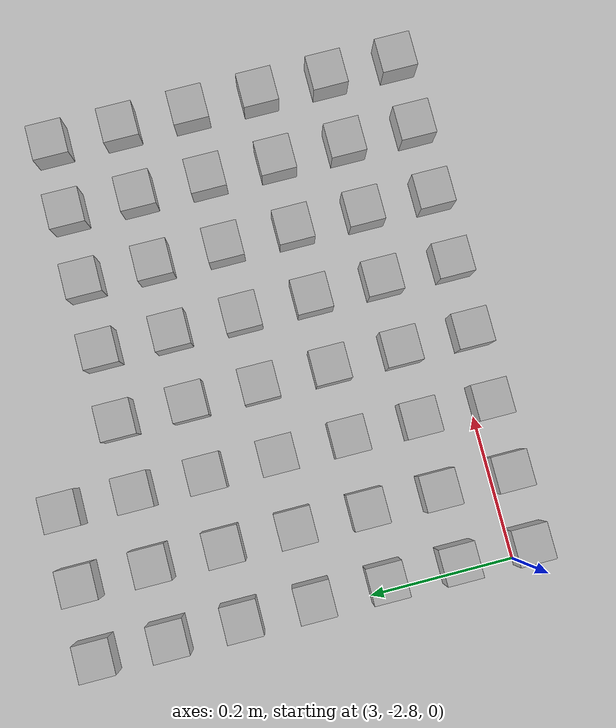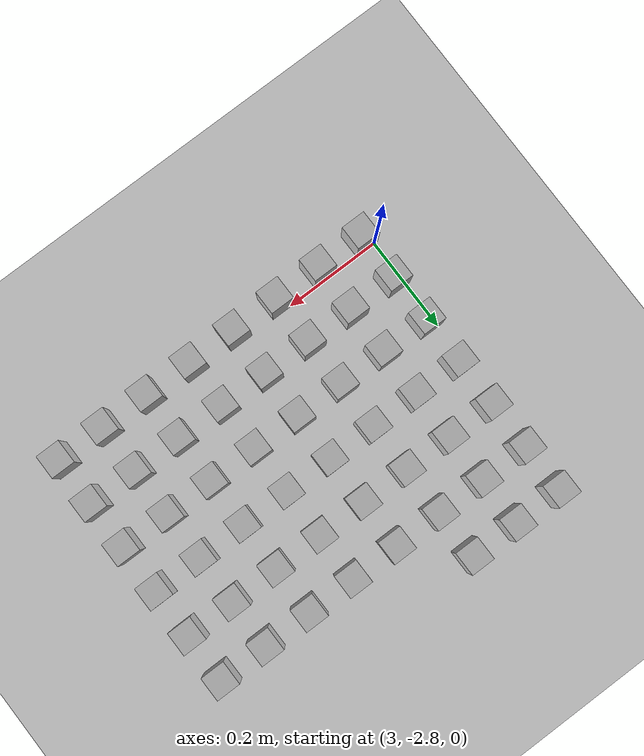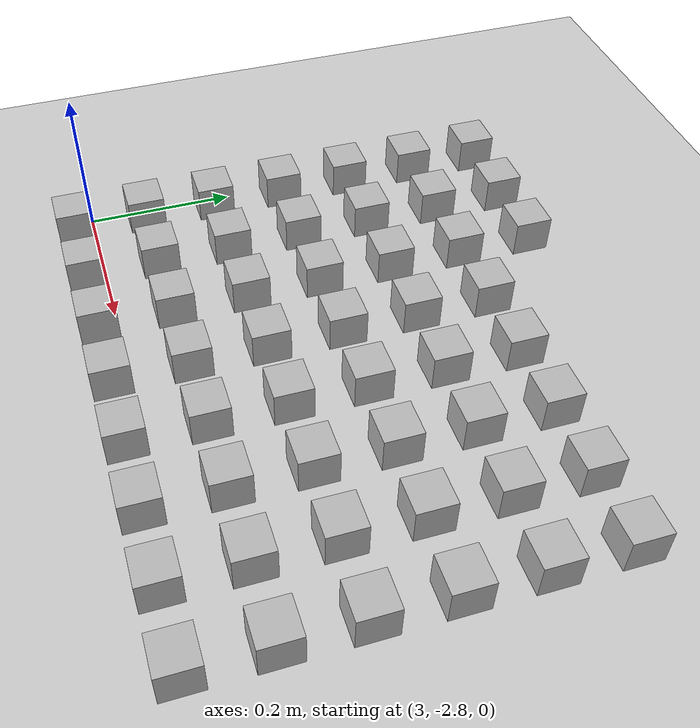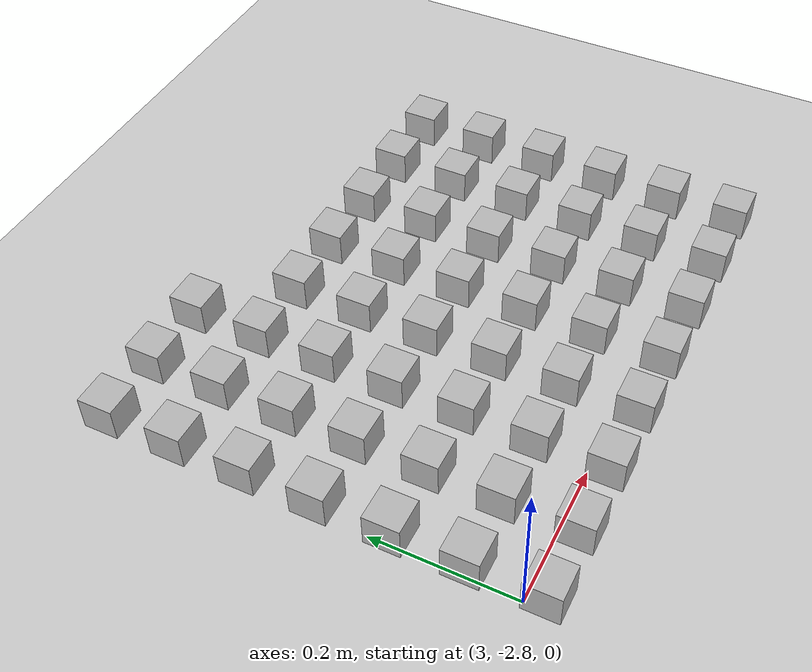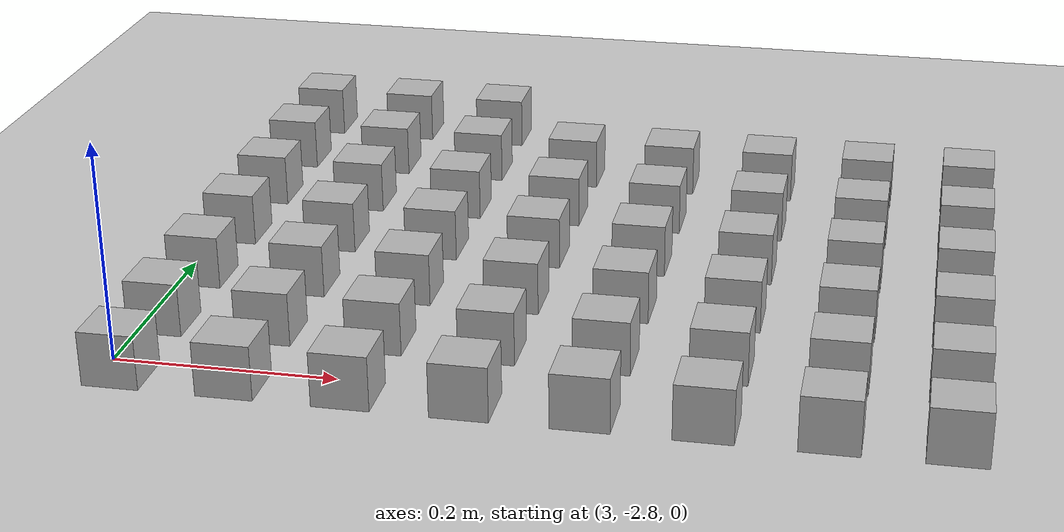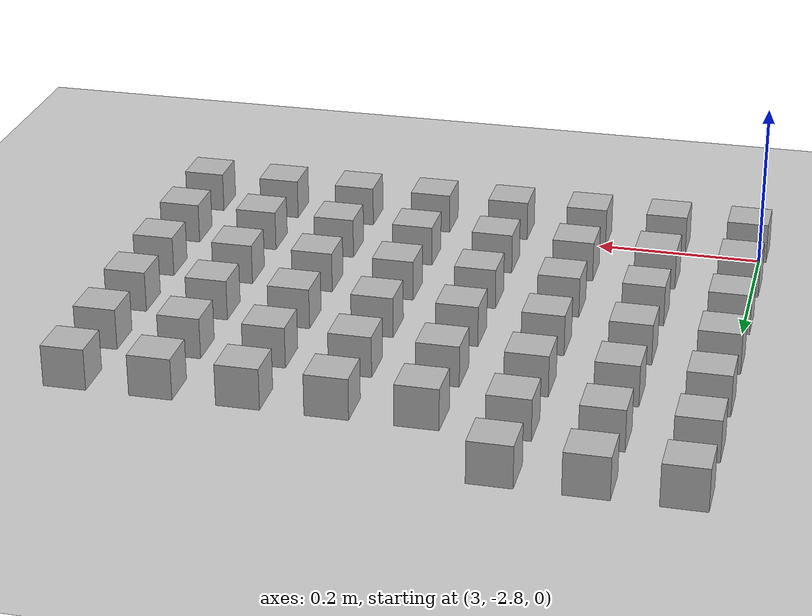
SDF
<sdf version="1.4">
 <world name="default">
  <model name="ground_plane">
   <static>1</static>
   <link name="link">
    <collision name="collision">
     <geometry><plane><normal>0 0 1</normal><size>100 100</size></plane></geometry>
     <surface><friction><ode><mu>100</mu><mu2>50</mu2></ode></friction></surface>
    </collision>
    <visual name="visual">
     <cast_shadows>0</cast_shadows>
     <geometry><plane><normal>0 0 1</normal><size>100 100</size></plane></geometry>
     <material>
      <script><uri>file://media/materials/scripts/gazebo.material</uri><name>Gazebo/Grey</name></script>
     </material>
    </visual>
    <velocity_decay><linear>0</linear><angular>0</angular></velocity_decay>
   </link>
  </model>
  <model name="at64">
   <static>0</static>
   <link name="link">
    <inertial>
     <mass>0.01</mass>
     <inertia><ixx>4e-05</ixx><ixy>0</ixy><ixz>0</ixz><iyy>4e-05</iyy><iyz>0</iyz><izz>4e-05</izz></inertia>
    </inertial>
    <visual name="visual">
     <geometry><box><size>0.05 0.05 0.05</size></box></geometry>
     <material>
      <script>
       <uri>model://at0/materials/scripts</uri>
       <uri>model://at0/materials/textures</uri>
       <name>at0/Diffuse</name>
      </script>
     </material>
    </visual>
    <collision name="collision">
     <geometry><box><size>0.05 0.05 0.05</size></box></geometry>
     <surface><friction><ode><mu>0.8</mu><mu2>0.7</mu2></ode></friction></surface>
    </collision>
    <velocity_decay><linear>0</linear><angular>0</angular></velocity_decay>
   </link>
   <pose>3.01655 -2.82401 0.025 0 -0 0</pose>
  </model>
  <model name="at65">
   <static>0</static>
   <link name="link">
    <inertial>
     <mass>0.01</mass>
     <inertia><ixx>4e-05</ixx><ixy>0</ixy><ixz>0</ixz><iyy>4e-05</iyy><iyz>0</iyz><izz>4e-05</izz></inertia>
    </inertial>
    <visual name="visual">
     <geometry><box><size>0.05 0.05 0.05</size></box></geometry>
     <material>
      <script>
       <uri>model://at0/materials/scripts</uri>
       <uri>model://at0/materials/textures</uri>
       <name>at0/Diffuse</name>
      </script>
     </material>
    </visual>
    <collision name="collision">
     <geometry><box><size>0.05 0.05 0.05</size></box></geometry>
     <surface><friction><ode><mu>0.8</mu><mu2>0.7</mu2></ode></friction></surface>
    </collision>
    <velocity_decay><linear>0</linear><angular>0</angular></velocity_decay>
   </link>
   <pose>3.11655 -2.82401 0.025 0 -0 0</pose>
  </model>
  <model name="at66">
   <static>0</static>
   <link name="link">
    <inertial>
     <mass>0.01</mass>
     <inertia><ixx>4e-05</ixx><ixy>0</ixy><ixz>0</ixz><iyy>4e-05</iyy><iyz>0</iyz><izz>4e-05</izz></inertia>
    </inertial>
    <visual name="visual">
     <geometry><box><size>0.05 0.05 0.05</size></box></geometry>
     <material>
      <script>
       <uri>model://at0/materials/scripts</uri>
       <uri>model://at0/materials/textures</uri>
       <name>at0/Diffuse</name>
      </script>
     </material>
    </visual>
    <collision name="collision">
     <geometry><box><size>0.05 0.05 0.05</size></box></geometry>
     <surface><friction><ode><mu>0.8</mu><mu2>0.7</mu2></ode></friction></surface>
    </collision>
    <velocity_decay><linear>0</linear><angular>0</angular></velocity_decay>
   </link>
   <pose>3.21655 -2.82401 0.025 0 -0 0</pose>
  </model>
  <model name="at67">
   <static>0</static>
   <link name="link">
    <inertial>
     <mass>0.01</mass>
     <inertia><ixx>4e-05</ixx><ixy>0</ixy><ixz>0</ixz><iyy>4e-05</iyy><iyz>0</iyz><izz>4e-05</izz></inertia>
    </inertial>
    <visual name="visual">
     <geometry><box><size>0.05 0.05 0.05</size></box></geometry>
     <material>
      <script>
       <uri>model://at0/materials/scripts</uri>
       <uri>model://at0/materials/textures</uri>
       <name>at0/Diffuse</name>
      </script>
     </material>
    </visual>
    <collision name="collision">
     <geometry><box><size>0.05 0.05 0.05</size></box></geometry>
     <surface><friction><ode><mu>0.8</mu><mu2>0.7</mu2></ode></friction></surface>
    </collision>
    <velocity_decay><linear>0</linear><angular>0</angular></velocity_decay>
   </link>
   <pose>3.31655 -2.82401 0.025 0 -0 0</pose>
  </model>
  <model name="at68">
   <static>0</static>
   <link name="link">
    <inertial>
     <mass>0.01</mass>
     <inertia><ixx>4e-05</ixx><ixy>0</ixy><ixz>0</ixz><iyy>4e-05</iyy><iyz>0</iyz><izz>4e-05</izz></inertia>
    </inertial>
    <visual name="visual">
     <geometry><box><size>0.05 0.05 0.05</size></box></geometry>
     <material>
      <script>
       <uri>model://at0/materials/scripts</uri>
       <uri>model://at0/materials/textures</uri>
       <name>at0/Diffuse</name>
      </script>
     </material>
    </visual>
    <collision name="collision">
     <geometry><box><size>0.05 0.05 0.05</size></box></geometry>
     <surface><friction><ode><mu>0.8</mu><mu2>0.7</mu2></ode></friction></surface>
    </collision>
    <velocity_decay><linear>0</linear><angular>0</angular></velocity_decay>
   </link>
   <pose>3.41655 -2.82401 0.025 0 -0 0</pose>
  </model>
  <model name="at69">
   <static>0</static>
   <link name="link">
    <inertial>
     <mass>0.01</mass>
     <inertia><ixx>4e-05</ixx><ixy>0</ixy><ixz>0</ixz><iyy>4e-05</iyy><iyz>0</iyz><izz>4e-05</izz></inertia>
    </inertial>
    <visual name="visual">
     <geometry><box><size>0.05 0.05 0.05</size></box></geometry>
     <material>
      <script>
       <uri>model://at0/materials/scripts</uri>
       <uri>model://at0/materials/textures</uri>
       <name>at0/Diffuse</name>
      </script>
     </material>
    </visual>
    <collision name="collision">
     <geometry><box><size>0.05 0.05 0.05</size></box></geometry>
     <surface><friction><ode><mu>0.8</mu><mu2>0.7</mu2></ode></friction></surface>
    </collision>
    <velocity_decay><linear>0</linear><angular>0</angular></velocity_decay>
   </link>
   <pose>3.51655 -2.82401 0.025 0 -0 0</pose>
  </model>
  <model name="at70">
   <static>0</static>
   <link name="link">
    <inertial>
     <mass>0.01</mass>
     <inertia><ixx>4e-05</ixx><ixy>0</ixy><ixz>0</ixz><iyy>4e-05</iyy><iyz>0</iyz><izz>4e-05</izz></inertia>
    </inertial>
    <visual name="visual">
     <geometry><box><size>0.05 0.05 0.05</size></box></geometry>
     <material>
      <script>
       <uri>model://at0/materials/scripts</uri>
       <uri>model://at0/materials/textures</uri>
       <name>at0/Diffuse</name>
      </script>
     </material>
    </visual>
    <collision name="collision">
     <geometry><box><size>0.05 0.05 0.05</size></box></geometry>
     <surface><friction><ode><mu>0.8</mu><mu2>0.7</mu2></ode></friction></surface>
    </collision>
    <velocity_decay><linear>0</linear><angular>0</angular></velocity_decay>
   </link>
   <pose>3.61655 -2.82401 0.025 0 -0 0</pose>
  </model>
  <model name="at71">
   <static>0</static>
   <link name="link">
    <inertial>
     <mass>0.01</mass>
     <inertia><ixx>4e-05</ixx><ixy>0</ixy><ixz>0</ixz><iyy>4e-05</iyy><iyz>0</iyz><izz>4e-05</izz></inertia>
    </inertial>
    <visual name="visual">
     <geometry><box><size>0.05 0.05 0.05</size></box></geometry>
     <material>
      <script>
       <uri>model://at0/materials/scripts</uri>
       <uri>model://at0/materials/textures</uri>
       <name>at0/Diffuse</name>
      </script>
     </material>
    </visual>
    <collision name="collision">
     <geometry><box><size>0.05 0.05 0.05</size></box></geometry>
     <surface><friction><ode><mu>0.8</mu><mu2>0.7</mu2></ode></friction></surface>
    </collision>
    <velocity_decay><linear>0</linear><angular>0</angular></velocity_decay>
   </link>
   <pose>3.71655 -2.82401 0.025 0 -0 0</pose>
  </model>
  <model name="at72">
   <static>0</static>
   <link name="link">
    <inertial>
     <mass>0.01</mass>
     <inertia><ixx>4e-05</ixx><ixy>0</ixy><ixz>0</ixz><iyy>4e-05</iyy><iyz>0</iyz><izz>4e-05</izz></inertia>
    </inertial>
    <visual name="visual">
     <geometry><box><size>0.05 0.05 0.05</size></box></geometry>
     <material>
      <script>
       <uri>model://at0/materials/scripts</uri>
       <uri>model://at0/materials/textures</uri>
       <name>at0/Diffuse</name>
      </script>
     </material>
    </visual>
    <collision name="collision">
     <geometry><box><size>0.05 0.05 0.05</size></box></geometry>
     <surface><friction><ode><mu>0.8</mu><mu2>0.7</mu2></ode></friction></surface>
    </collision>
    <velocity_decay><linear>0</linear><angular>0</angular></velocity_decay>
   </link>
   <pose>3.01655 -2.72401 0.025 0 -0 0</pose>
  </model>
  <model name="at73">
   <static>0</static>
   <link name="link">
    <inertial>
     <mass>0.01</mass>
     <inertia><ixx>4e-05</ixx><ixy>0</ixy><ixz>0</ixz><iyy>4e-05</iyy><iyz>0</iyz><izz>4e-05</izz></inertia>
    </inertial>
    <visual name="visual">
     <geometry><box><size>0.05 0.05 0.05</size></box></geometry>
     <material>
      <script>
       <uri>model://at0/materials/scripts</uri>
       <uri>model://at0/materials/textures</uri>
       <name>at0/Diffuse</name>
      </script>
     </material>
    </visual>
    <collision name="collision">
     <geometry><box><size>0.05 0.05 0.05</size></box></geometry>
     <surface><friction><ode><mu>0.8</mu><mu2>0.7</mu2></ode></friction></surface>
    </collision>
    <velocity_decay><linear>0</linear><angular>0</angular></velocity_decay>
   </link>
   <pose>3.11655 -2.72401 0.025 0 -0 0</pose>
  </model>
  <model name="at74">
   <static>0</static>
   <link name="link">
    <inertial>
     <mass>0.01</mass>
     <inertia><ixx>4e-05</ixx><ixy>0</ixy><ixz>0</ixz><iyy>4e-05</iyy><iyz>0</iyz><izz>4e-05</izz></inertia>
    </inertial>
    <visual name="visual">
     <geometry><box><size>0.05 0.05 0.05</size></box></geometry>
     <material>
      <script>
       <uri>model://at0/materials/scripts</uri>
       <uri>model://at0/materials/textures</uri>
       <name>at0/Diffuse</name>
      </script>
     </material>
    </visual>
    <collision name="collision">
     <geometry><box><size>0.05 0.05 0.05</size></box></geometry>
     <surface><friction><ode><mu>0.8</mu><mu2>0.7</mu2></ode></friction></surface>
    </collision>
    <velocity_decay><linear>0</linear><angular>0</angular></velocity_decay>
   </link>
   <pose>3.21655 -2.72401 0.025 0 -0 0</pose>
  </model>
  <model name="at75">
   <static>0</static>
   <link name="link">
    <inertial>
     <mass>0.01</mass>
     <inertia><ixx>4e-05</ixx><ixy>0</ixy><ixz>0</ixz><iyy>4e-05</iyy><iyz>0</iyz><izz>4e-05</izz></inertia>
    </inertial>
    <visual name="visual">
     <geometry><box><size>0.05 0.05 0.05</size></box></geometry>
     <material>
      <script>
       <uri>model://at0/materials/scripts</uri>
       <uri>model://at0/materials/textures</uri>
       <name>at0/Diffuse</name>
      </script>
     </material>
    </visual>
    <collision name="collision">
     <geometry><box><size>0.05 0.05 0.05</size></box></geometry>
     <surface><friction><ode><mu>0.8</mu><mu2>0.7</mu2></ode></friction></surface>
    </collision>
    <velocity_decay><linear>0</linear><angular>0</angular></velocity_decay>
   </link>
   <pose>3.31655 -2.72401 0.025 0 -0 0</pose>
  </model>
  <model name="at76">
   <static>0</static>
   <link name="link">
    <inertial>
     <mass>0.01</mass>
     <inertia><ixx>4e-05</ixx><ixy>0</ixy><ixz>0</ixz><iyy>4e-05</iyy><iyz>0</iyz><izz>4e-05</izz></inertia>
    </inertial>
    <visual name="visual">
     <geometry><box><size>0.05 0.05 0.05</size></box></geometry>
     <material>
      <script>
       <uri>model://at0/materials/scripts</uri>
       <uri>model://at0/materials/textures</uri>
       <name>at0/Diffuse</name>
      </script>
     </material>
    </visual>
    <collision name="collision">
     <geometry><box><size>0.05 0.05 0.05</size></box></geometry>
     <surface><friction><ode><mu>0.8</mu><mu2>0.7</mu2></ode></friction></surface>
    </collision>
    <velocity_decay><linear>0</linear><angular>0</angular></velocity_decay>
   </link>
   <pose>3.41655 -2.72401 0.025 0 -0 0</pose>
  </model>
  <model name="at77">
   <static>0</static>
   <link name="link">
    <inertial>
     <mass>0.01</mass>
     <inertia><ixx>4e-05</ixx><ixy>0</ixy><ixz>0</ixz><iyy>4e-05</iyy><iyz>0</iyz><izz>4e-05</izz></inertia>
    </inertial>
    <visual name="visual">
     <geometry><box><size>0.05 0.05 0.05</size></box></geometry>
     <material>
      <script>
       <uri>model://at0/materials/scripts</uri>
       <uri>model://at0/materials/textures</uri>
       <name>at0/Diffuse</name>
      </script>
     </material>
    </visual>
    <collision name="collision">
     <geometry><box><size>0.05 0.05 0.05</size></box></geometry>
     <surface><friction><ode><mu>0.8</mu><mu2>0.7</mu2></ode></friction></surface>
    </collision>
    <velocity_decay><linear>0</linear><angular>0</angular></velocity_decay>
   </link>
   <pose>3.51655 -2.72401 0.025 0 -0 0</pose>
  </model>
  <model name="at78">
   <static>0</static>
   <link name="link">
    <inertial>
     <mass>0.01</mass>
     <inertia><ixx>4e-05</ixx><ixy>0</ixy><ixz>0</ixz><iyy>4e-05</iyy><iyz>0</iyz><izz>4e-05</izz></inertia>
    </inertial>
    <visual name="visual">
     <geometry><box><size>0.05 0.05 0.05</size></box></geometry>
     <material>
      <script>
       <uri>model://at0/materials/scripts</uri>
       <uri>model://at0/materials/textures</uri>
       <name>at0/Diffuse</name>
      </script>
     </material>
    </visual>
    <collision name="collision">
     <geometry><box><size>0.05 0.05 0.05</size></box></geometry>
     <surface><friction><ode><mu>0.8</mu><mu2>0.7</mu2></ode></friction></surface>
    </collision>
    <velocity_decay><linear>0</linear><angular>0</angular></velocity_decay>
   </link>
   <pose>3.61655 -2.72401 0.025 0 -0 0</pose>
  </model>
  <model name="at79">
   <static>0</static>
   <link name="link">
    <inertial>
     <mass>0.01</mass>
     <inertia><ixx>4e-05</ixx><ixy>0</ixy><ixz>0</ixz><iyy>4e-05</iyy><iyz>0</iyz><izz>4e-05</izz></inertia>
    </inertial>
    <visual name="visual">
     <geometry><box><size>0.05 0.05 0.05</size></box></geometry>
     <material>
      <script>
       <uri>model://at0/materials/scripts</uri>
       <uri>model://at0/materials/textures</uri>
       <name>at0/Diffuse</name>
      </script>
     </material>
    </visual>
    <collision name="collision">
     <geometry><box><size>0.05 0.05 0.05</size></box></geometry>
     <surface><friction><ode><mu>0.8</mu><mu2>0.7</mu2></ode></friction></surface>
    </collision>
    <velocity_decay><linear>0</linear><angular>0</angular></velocity_decay>
   </link>
   <pose>3.71655 -2.72401 0.025 0 -0 0</pose>
  </model>
  <model name="at80">
   <static>0</static>
   <link name="link">
    <inertial>
     <mass>0.01</mass>
     <inertia><ixx>4e-05</ixx><ixy>0</ixy><ixz>0</ixz><iyy>4e-05</iyy><iyz>0</iyz><izz>4e-05</izz></inertia>
    </inertial>
    <visual name="visual">
     <geometry><box><size>0.05 0.05 0.05</size></box></geometry>
     <material>
      <script>
       <uri>model://at0/materials/scripts</uri>
       <uri>model://at0/materials/textures</uri>
       <name>at0/Diffuse</name>
      </script>
     </material>
    </visual>
    <collision name="collision">
     <geometry><box><size>0.05 0.05 0.05</size></box></geometry>
     <surface><friction><ode><mu>0.8</mu><mu2>0.7</mu2></ode></friction></surface>
    </collision>
    <velocity_decay><linear>0</linear><angular>0</angular></velocity_decay>
   </link>
   <pose>3.01655 -2.62401 0.025 0 -0 0</pose>
  </model>
  <model name="at81">
   <static>0</static>
   <link name="link">
    <inertial>
     <mass>0.01</mass>
     <inertia><ixx>4e-05</ixx><ixy>0</ixy><ixz>0</ixz><iyy>4e-05</iyy><iyz>0</iyz><izz>4e-05</izz></inertia>
    </inertial>
    <visual name="visual">
     <geometry><box><size>0.05 0.05 0.05</size></box></geometry>
     <material>
      <script>
       <uri>model://at0/materials/scripts</uri>
       <uri>model://at0/materials/textures</uri>
       <name>at0/Diffuse</name>
      </script>
     </material>
    </visual>
    <collision name="collision">
     <geometry><box><size>0.05 0.05 0.05</size></box></geometry>
     <surface><friction><ode><mu>0.8</mu><mu2>0.7</mu2></ode></friction></surface>
    </collision>
    <velocity_decay><linear>0</linear><angular>0</angular></velocity_decay>
   </link>
   <pose>3.11655 -2.62401 0.025 0 -0 0</pose>
  </model>
  <model name="at82">
   <static>0</static>
   <link name="link">
    <inertial>
     <mass>0.01</mass>
     <inertia><ixx>4e-05</ixx><ixy>0</ixy><ixz>0</ixz><iyy>4e-05</iyy><iyz>0</iyz><izz>4e-05</izz></inertia>
    </inertial>
    <visual name="visual">
     <geometry><box><size>0.05 0.05 0.05</size></box></geometry>
     <material>
      <script>
       <uri>model://at0/materials/scripts</uri>
       <uri>model://at0/materials/textures</uri>
       <name>at0/Diffuse</name>
      </script>
     </material>
    </visual>
    <collision name="collision">
     <geometry><box><size>0.05 0.05 0.05</size></box></geometry>
     <surface><friction><ode><mu>0.8</mu><mu2>0.7</mu2></ode></friction></surface>
    </collision>
    <velocity_decay><linear>0</linear><angular>0</angular></velocity_decay>
   </link>
   <pose>3.21655 -2.62401 0.025 0 -0 0</pose>
  </model>
  <model name="at83">
   <static>0</static>
   <link name="link">
    <inertial>
     <mass>0.01</mass>
     <inertia><ixx>4e-05</ixx><ixy>0</ixy><ixz>0</ixz><iyy>4e-05</iyy><iyz>0</iyz><izz>4e-05</izz></inertia>
    </inertial>
    <visual name="visual">
     <geometry><box><size>0.05 0.05 0.05</size></box></geometry>
     <material>
      <script>
       <uri>model://at0/materials/scripts</uri>
       <uri>model://at0/materials/textures</uri>
       <name>at0/Diffuse</name>
      </script>
     </material>
    </visual>
    <collision name="collision">
     <geometry><box><size>0.05 0.05 0.05</size></box></geometry>
     <surface><friction><ode><mu>0.8</mu><mu2>0.7</mu2></ode></friction></surface>
    </collision>
    <velocity_decay><linear>0</linear><angular>0</angular></velocity_decay>
   </link>
   <pose>3.31655 -2.62401 0.025 0 -0 0</pose>
  </model>
  <model name="at84">
   <static>0</static>
   <link name="link">
    <inertial>
     <mass>0.01</mass>
     <inertia><ixx>4e-05</ixx><ixy>0</ixy><ixz>0</ixz><iyy>4e-05</iyy><iyz>0</iyz><izz>4e-05</izz></inertia>
    </inertial>
    <visual name="visual">
     <geometry><box><size>0.05 0.05 0.05</size></box></geometry>
     <material>
      <script>
       <uri>model://at0/materials/scripts</uri>
       <uri>model://at0/materials/textures</uri>
       <name>at0/Diffuse</name>
      </script>
     </material>
    </visual>
    <collision name="collision">
     <geometry><box><size>0.05 0.05 0.05</size></box></geometry>
     <surface><friction><ode><mu>0.8</mu><mu2>0.7</mu2></ode></friction></surface>
    </collision>
    <velocity_decay><linear>0</linear><angular>0</angular></velocity_decay>
   </link>
   <pose>3.41655 -2.62401 0.025 0 -0 0</pose>
  </model>
  <model name="at85">
   <static>0</static>
   <link name="link">
    <inertial>
     <mass>0.01</mass>
     <inertia><ixx>4e-05</ixx><ixy>0</ixy><ixz>0</ixz><iyy>4e-05</iyy><iyz>0</iyz><izz>4e-05</izz></inertia>
    </inertial>
    <visual name="visual">
     <geometry><box><size>0.05 0.05 0.05</size></box></geometry>
     <material>
      <script>
       <uri>model://at0/materials/scripts</uri>
       <uri>model://at0/materials/textures</uri>
       <name>at0/Diffuse</name>
      </script>
     </material>
    </visual>
    <collision name="collision">
     <geometry><box><size>0.05 0.05 0.05</size></box></geometry>
     <surface><friction><ode><mu>0.8</mu><mu2>0.7</mu2></ode></friction></surface>
    </collision>
    <velocity_decay><linear>0</linear><angular>0</angular></velocity_decay>
   </link>
   <pose>3.51655 -2.62401 0.025 0 -0 0</pose>
  </model>
  <model name="at86">
   <static>0</static>
   <link name="link">
    <inertial>
     <mass>0.01</mass>
     <inertia><ixx>4e-05</ixx><ixy>0</ixy><ixz>0</ixz><iyy>4e-05</iyy><iyz>0</iyz><izz>4e-05</izz></inertia>
    </inertial>
    <visual name="visual">
     <geometry><box><size>0.05 0.05 0.05</size></box></geometry>
     <material>
      <script>
       <uri>model://at0/materials/scripts</uri>
       <uri>model://at0/materials/textures</uri>
       <name>at0/Diffuse</name>
      </script>
     </material>
    </visual>
    <collision name="collision">
     <geometry><box><size>0.05 0.05 0.05</size></box></geometry>
     <surface><friction><ode><mu>0.8</mu><mu2>0.7</mu2></ode></friction></surface>
    </collision>
    <velocity_decay><linear>0</linear><angular>0</angular></velocity_decay>
   </link>
   <pose>3.61655 -2.62401 0.025 0 -0 0</pose>
  </model>
  <model name="at87">
   <static>0</static>
   <link name="link">
    <inertial>
     <mass>0.01</mass>
     <inertia><ixx>4e-05</ixx><ixy>0</ixy><ixz>0</ixz><iyy>4e-05</iyy><iyz>0</iyz><izz>4e-05</izz></inertia>
    </inertial>
    <visual name="visual">
     <geometry><box><size>0.05 0.05 0.05</size></box></geometry>
     <material>
      <script>
       <uri>model://at0/materials/scripts</uri>
       <uri>model://at0/materials/textures</uri>
       <name>at0/Diffuse</name>
      </script>
     </material>
    </visual>
    <collision name="collision">
     <geometry><box><size>0.05 0.05 0.05</size></box></geometry>
     <surface><friction><ode><mu>0.8</mu><mu2>0.7</mu2></ode></friction></surface>
    </collision>
    <velocity_decay><linear>0</linear><angular>0</angular></velocity_decay>
   </link>
   <pose>3.71655 -2.62401 0.025 0 -0 0</pose>
  </model>
  <model name="at88">
   <static>0</static>
   <link name="link">
    <inertial>
     <mass>0.01</mass>
     <inertia><ixx>4e-05</ixx><ixy>0</ixy><ixz>0</ixz><iyy>4e-05</iyy><iyz>0</iyz><izz>4e-05</izz></inertia>
    </inertial>
    <visual name="visual">
     <geometry><box><size>0.05 0.05 0.05</size></box></geometry>
     <material>
      <script>
       <uri>model://at0/materials/scripts</uri>
       <uri>model://at0/materials/textures</uri>
       <name>at0/Diffuse</name>
      </script>
     </material>
    </visual>
    <collision name="collision">
     <geometry><box><size>0.05 0.05 0.05</size></box></geometry>
     <surface><friction><ode><mu>0.8</mu><mu2>0.7</mu2></ode></friction></surface>
    </collision>
    <velocity_decay><linear>0</linear><angular>0</angular></velocity_decay>
   </link>
   <pose>3.01655 -2.52401 0.025 0 -0 0</pose>
  </model>
  <model name="at89">
   <static>0</static>
   <link name="link">
    <inertial>
     <mass>0.01</mass>
     <inertia><ixx>4e-05</ixx><ixy>0</ixy><ixz>0</ixz><iyy>4e-05</iyy><iyz>0</iyz><izz>4e-05</izz></inertia>
    </inertial>
    <visual name="visual">
     <geometry><box><size>0.05 0.05 0.05</size></box></geometry>
     <material>
      <script>
       <uri>model://at0/materials/scripts</uri>
       <uri>model://at0/materials/textures</uri>
       <name>at0/Diffuse</name>
      </script>
     </material>
    </visual>
    <collision name="collision">
     <geometry><box><size>0.05 0.05 0.05</size></box></geometry>
     <surface><friction><ode><mu>0.8</mu><mu2>0.7</mu2></ode></friction></surface>
    </collision>
    <velocity_decay><linear>0</linear><angular>0</angular></velocity_decay>
   </link>
   <pose>3.11655 -2.52401 0.025 0 -0 0</pose>
  </model>
  <model name="at90">
   <static>0</static>
   <link name="link">
    <inertial>
     <mass>0.01</mass>
     <inertia><ixx>4e-05</ixx><ixy>0</ixy><ixz>0</ixz><iyy>4e-05</iyy><iyz>0</iyz><izz>4e-05</izz></inertia>
    </inertial>
    <visual name="visual">
     <geometry><box><size>0.05 0.05 0.05</size></box></geometry>
     <material>
      <script>
       <uri>model://at0/materials/scripts</uri>
       <uri>model://at0/materials/textures</uri>
       <name>at0/Diffuse</name>
      </script>
     </material>
    </visual>
    <collision name="collision">
     <geometry><box><size>0.05 0.05 0.05</size></box></geometry>
     <surface><friction><ode><mu>0.8</mu><mu2>0.7</mu2></ode></friction></surface>
    </collision>
    <velocity_decay><linear>0</linear><angular>0</angular></velocity_decay>
   </link>
   <pose>3.21655 -2.52401 0.025 0 -0 0</pose>
  </model>
  <model name="at91">
   <static>0</static>
   <link name="link">
    <inertial>
     <mass>0.01</mass>
     <inertia><ixx>4e-05</ixx><ixy>0</ixy><ixz>0</ixz><iyy>4e-05</iyy><iyz>0</iyz><izz>4e-05</izz></inertia>
    </inertial>
    <visual name="visual">
     <geometry><box><size>0.05 0.05 0.05</size></box></geometry>
     <material>
      <script>
       <uri>model://at0/materials/scripts</uri>
       <uri>model://at0/materials/textures</uri>
       <name>at0/Diffuse</name>
      </script>
     </material>
    </visual>
    <collision name="collision">
     <geometry><box><size>0.05 0.05 0.05</size></box></geometry>
     <surface><friction><ode><mu>0.8</mu><mu2>0.7</mu2></ode></friction></surface>
    </collision>
    <velocity_decay><linear>0</linear><angular>0</angular></velocity_decay>
   </link>
   <pose>3.31655 -2.52401 0.025 0 -0 0</pose>
  </model>
  <model name="at92">
   <static>0</static>
   <link name="link">
    <inertial>
     <mass>0.01</mass>
     <inertia><ixx>4e-05</ixx><ixy>0</ixy><ixz>0</ixz><iyy>4e-05</iyy><iyz>0</iyz><izz>4e-05</izz></inertia>
    </inertial>
    <visual name="visual">
     <geometry><box><size>0.05 0.05 0.05</size></box></geometry>
     <material>
      <script>
       <uri>model://at0/materials/scripts</uri>
       <uri>model://at0/materials/textures</uri>
       <name>at0/Diffuse</name>
      </script>
     </material>
    </visual>
    <collision name="collision">
     <geometry><box><size>0.05 0.05 0.05</size></box></geometry>
     <surface><friction><ode><mu>0.8</mu><mu2>0.7</mu2></ode></friction></surface>
    </collision>
    <velocity_decay><linear>0</linear><angular>0</angular></velocity_decay>
   </link>
   <pose>3.41655 -2.52401 0.025 0 -0 0</pose>
  </model>
  <model name="at93">
   <static>0</static>
   <link name="link">
    <inertial>
     <mass>0.01</mass>
     <inertia><ixx>4e-05</ixx><ixy>0</ixy><ixz>0</ixz><iyy>4e-05</iyy><iyz>0</iyz><izz>4e-05</izz></inertia>
    </inertial>
    <visual name="visual">
     <geometry><box><size>0.05 0.05 0.05</size></box></geometry>
     <material>
      <script>
       <uri>model://at0/materials/scripts</uri>
       <uri>model://at0/materials/textures</uri>
       <name>at0/Diffuse</name>
      </script>
     </material>
    </visual>
    <collision name="collision">
     <geometry><box><size>0.05 0.05 0.05</size></box></geometry>
     <surface><friction><ode><mu>0.8</mu><mu2>0.7</mu2></ode></friction></surface>
    </collision>
    <velocity_decay><linear>0</linear><angular>0</angular></velocity_decay>
   </link>
   <pose>3.51655 -2.52401 0.025 0 -0 0</pose>
  </model>
  <model name="at94">
   <static>0</static>
   <link name="link">
    <inertial>
     <mass>0.01</mass>
     <inertia><ixx>4e-05</ixx><ixy>0</ixy><ixz>0</ixz><iyy>4e-05</iyy><iyz>0</iyz><izz>4e-05</izz></inertia>
    </inertial>
    <visual name="visual">
     <geometry><box><size>0.05 0.05 0.05</size></box></geometry>
     <material>
      <script>
       <uri>model://at0/materials/scripts</uri>
       <uri>model://at0/materials/textures</uri>
       <name>at0/Diffuse</name>
      </script>
     </material>
    </visual>
    <collision name="collision">
     <geometry><box><size>0.05 0.05 0.05</size></box></geometry>
     <surface><friction><ode><mu>0.8</mu><mu2>0.7</mu2></ode></friction></surface>
    </collision>
    <velocity_decay><linear>0</linear><angular>0</angular></velocity_decay>
   </link>
   <pose>3.61655 -2.52401 0.025 0 -0 0</pose>
  </model>
  <model name="at95">
   <static>0</static>
   <link name="link">
    <inertial>
     <mass>0.01</mass>
     <inertia><ixx>4e-05</ixx><ixy>0</ixy><ixz>0</ixz><iyy>4e-05</iyy><iyz>0</iyz><izz>4e-05</izz></inertia>
    </inertial>
    <visual name="visual">
     <geometry><box><size>0.05 0.05 0.05</size></box></geometry>
     <material>
      <script>
       <uri>model://at0/materials/scripts</uri>
       <uri>model://at0/materials/textures</uri>
       <name>at0/Diffuse</name>
      </script>
     </material>
    </visual>
    <collision name="collision">
     <geometry><box><size>0.05 0.05 0.05</size></box></geometry>
     <surface><friction><ode><mu>0.8</mu><mu2>0.7</mu2></ode></friction></surface>
    </collision>
    <velocity_decay><linear>0</linear><angular>0</angular></velocity_decay>
   </link>
   <pose>3.71655 -2.52401 0.025 0 -0 0</pose>
  </model>
  <model name="at96">
   <static>0</static>
   <link name="link">
    <inertial>
     <mass>0.01</mass>
     <inertia><ixx>4e-05</ixx><ixy>0</ixy><ixz>0</ixz><iyy>4e-05</iyy><iyz>0</iyz><izz>4e-05</izz></inertia>
    </inertial>
    <visual name="visual">
     <geometry><box><size>0.05 0.05 0.05</size></box></geometry>
     <material>
      <script>
       <uri>model://at0/materials/scripts</uri>
       <uri>model://at0/materials/textures</uri>
       <name>at0/Diffuse</name>
      </script>
     </material>
    </visual>
    <collision name="collision">
     <geometry><box><size>0.05 0.05 0.05</size></box></geometry>
     <surface><friction><ode><mu>0.8</mu><mu2>0.7</mu2></ode></friction></surface>
    </collision>
    <velocity_decay><linear>0</linear><angular>0</angular></velocity_decay>
   </link>
   <pose>3.01655 -2.42401 0.025 0 -0 0</pose>
  </model>
  <model name="at97">
   <static>0</static>
   <link name="link">
    <inertial>
     <mass>0.01</mass>
     <inertia><ixx>4e-05</ixx><ixy>0</ixy><ixz>0</ixz><iyy>4e-05</iyy><iyz>0</iyz><izz>4e-05</izz></inertia>
    </inertial>
    <visual name="visual">
     <geometry><box><size>0.05 0.05 0.05</size></box></geometry>
     <material>
      <script>
       <uri>model://at0/materials/scripts</uri>
       <uri>model://at0/materials/textures</uri>
       <name>at0/Diffuse</name>
      </script>
     </material>
    </visual>
    <collision name="collision">
     <geometry><box><size>0.05 0.05 0.05</size></box></geometry>
     <surface><friction><ode><mu>0.8</mu><mu2>0.7</mu2></ode></friction></surface>
    </collision>
    <velocity_decay><linear>0</linear><angular>0</angular></velocity_decay>
   </link>
   <pose>3.11655 -2.42401 0.025 0 -0 0</pose>
  </model>
  <model name="at98">
   <static>0</static>
   <link name="link">
    <inertial>
     <mass>0.01</mass>
     <inertia><ixx>4e-05</ixx><ixy>0</ixy><ixz>0</ixz><iyy>4e-05</iyy><iyz>0</iyz><izz>4e-05</izz></inertia>
    </inertial>
    <visual name="visual">
     <geometry><box><size>0.05 0.05 0.05</size></box></geometry>
     <material>
      <script>
       <uri>model://at0/materials/scripts</uri>
       <uri>model://at0/materials/textures</uri>
       <name>at0/Diffuse</name>
      </script>
     </material>
    </visual>
    <collision name="collision">
     <geometry><box><size>0.05 0.05 0.05</size></box></geometry>
     <surface><friction><ode><mu>0.8</mu><mu2>0.7</mu2></ode></friction></surface>
    </collision>
    <velocity_decay><linear>0</linear><angular>0</angular></velocity_decay>
   </link>
   <pose>3.21655 -2.42401 0.025 0 -0 0</pose>
  </model>
  <model name="at99">
   <static>0</static>
   <link name="link">
    <inertial>
     <mass>0.01</mass>
     <inertia><ixx>4e-05</ixx><ixy>0</ixy><ixz>0</ixz><iyy>4e-05</iyy><iyz>0</iyz><izz>4e-05</izz></inertia>
    </inertial>
    <visual name="visual">
     <geometry><box><size>0.05 0.05 0.05</size></box></geometry>
     <material>
      <script>
       <uri>model://at0/materials/scripts</uri>
       <uri>model://at0/materials/textures</uri>
       <name>at0/Diffuse</name>
      </script>
     </material>
    </visual>
    <collision name="collision">
     <geometry><box><size>0.05 0.05 0.05</size></box></geometry>
     <surface><friction><ode><mu>0.8</mu><mu2>0.7</mu2></ode></friction></surface>
    </collision>
    <velocity_decay><linear>0</linear><angular>0</angular></velocity_decay>
   </link>
   <pose>3.31655 -2.42401 0.025 0 -0 0</pose>
  </model>
  <model name="at100">
   <static>0</static>
   <link name="link">
    <inertial>
     <mass>0.01</mass>
     <inertia><ixx>4e-05</ixx><ixy>0</ixy><ixz>0</ixz><iyy>4e-05</iyy><iyz>0</iyz><izz>4e-05</izz></inertia>
    </inertial>
    <visual name="visual">
     <geometry><box><size>0.05 0.05 0.05</size></box></geometry>
     <material>
      <script>
       <uri>model://at0/materials/scripts</uri>
       <uri>model://at0/materials/textures</uri>
       <name>at0/Diffuse</name>
      </script>
     </material>
    </visual>
    <collision name="collision">
     <geometry><box><size>0.05 0.05 0.05</size></box></geometry>
     <surface><friction><ode><mu>0.8</mu><mu2>0.7</mu2></ode></friction></surface>
    </collision>
    <velocity_decay><linear>0</linear><angular>0</angular></velocity_decay>
   </link>
   <pose>3.41655 -2.42401 0.025 0 -0 0</pose>
  </model>
  <model name="at101">
   <static>0</static>
   <link name="link">
    <inertial>
     <mass>0.01</mass>
     <inertia><ixx>4e-05</ixx><ixy>0</ixy><ixz>0</ixz><iyy>4e-05</iyy><iyz>0</iyz><izz>4e-05</izz></inertia>
    </inertial>
    <visual name="visual">
     <geometry><box><size>0.05 0.05 0.05</size></box></geometry>
     <material>
      <script>
       <uri>model://at0/materials/scripts</uri>
       <uri>model://at0/materials/textures</uri>
       <name>at0/Diffuse</name>
      </script>
     </material>
    </visual>
    <collision name="collision">
     <geometry><box><size>0.05 0.05 0.05</size></box></geometry>
     <surface><friction><ode><mu>0.8</mu><mu2>0.7</mu2></ode></friction></surface>
    </collision>
    <velocity_decay><linear>0</linear><angular>0</angular></velocity_decay>
   </link>
   <pose>3.51655 -2.42401 0.025 0 -0 0</pose>
  </model>
  <model name="at102">
   <static>0</static>
   <link name="link">
    <inertial>
     <mass>0.01</mass>
     <inertia><ixx>4e-05</ixx><ixy>0</ixy><ixz>0</ixz><iyy>4e-05</iyy><iyz>0</iyz><izz>4e-05</izz></inertia>
    </inertial>
    <visual name="visual">
     <geometry><box><size>0.05 0.05 0.05</size></box></geometry>
     <material>
      <script>
       <uri>model://at0/materials/scripts</uri>
       <uri>model://at0/materials/textures</uri>
       <name>at0/Diffuse</name>
      </script>
     </material>
    </visual>
    <collision name="collision">
     <geometry><box><size>0.05 0.05 0.05</size></box></geometry>
     <surface><friction><ode><mu>0.8</mu><mu2>0.7</mu2></ode></friction></surface>
    </collision>
    <velocity_decay><linear>0</linear><angular>0</angular></velocity_decay>
   </link>
   <pose>3.61655 -2.42401 0.025 0 -0 0</pose>
  </model>
  <model name="at103">
   <static>0</static>
   <link name="link">
    <inertial>
     <mass>0.01</mass>
     <inertia><ixx>4e-05</ixx><ixy>0</ixy><ixz>0</ixz><iyy>4e-05</iyy><iyz>0</iyz><izz>4e-05</izz></inertia>
    </inertial>
    <visual name="visual">
     <geometry><box><size>0.05 0.05 0.05</size></box></geometry>
     <material>
      <script>
       <uri>model://at0/materials/scripts</uri>
       <uri>model://at0/materials/textures</uri>
       <name>at0/Diffuse</name>
      </script>
     </material>
    </visual>
    <collision name="collision">
     <geometry><box><size>0.05 0.05 0.05</size></box></geometry>
     <surface><friction><ode><mu>0.8</mu><mu2>0.7</mu2></ode></friction></surface>
    </collision>
    <velocity_decay><linear>0</linear><angular>0</angular></velocity_decay>
   </link>
   <pose>3.71655 -2.42401 0.025 0 -0 0</pose>
  </model>
  <model name="at104">
   <static>0</static>
   <link name="link">
    <inertial>
     <mass>0.01</mass>
     <inertia><ixx>4e-05</ixx><ixy>0</ixy><ixz>0</ixz><iyy>4e-05</iyy><iyz>0</iyz><izz>4e-05</izz></inertia>
    </inertial>
    <visual name="visual">
     <geometry><box><size>0.05 0.05 0.05</size></box></geometry>
     <material>
      <script>
       <uri>model://at0/materials/scripts</uri>
       <uri>model://at0/materials/textures</uri>
       <name>at0/Diffuse</name>
      </script>
     </material>
    </visual>
    <collision name="collision">
     <geometry><box><size>0.05 0.05 0.05</size></box></geometry>
     <surface><friction><ode><mu>0.8</mu><mu2>0.7</mu2></ode></friction></surface>
    </collision>
    <velocity_decay><linear>0</linear><angular>0</angular></velocity_decay>
   </link>
   <pose>3.01655 -2.32401 0.025 0 -0 0</pose>
  </model>
  <model name="at105">
   <static>0</static>
   <link name="link">
    <inertial>
     <mass>0.01</mass>
     <inertia><ixx>4e-05</ixx><ixy>0</ixy><ixz>0</ixz><iyy>4e-05</iyy><iyz>0</iyz><izz>4e-05</izz></inertia>
    </inertial>
    <visual name="visual">
     <geometry><box><size>0.05 0.05 0.05</size></box></geometry>
     <material>
      <script>
       <uri>model://at0/materials/scripts</uri>
       <uri>model://at0/materials/textures</uri>
       <name>at0/Diffuse</name>
      </script>
     </material>
    </visual>
    <collision name="collision">
     <geometry><box><size>0.05 0.05 0.05</size></box></geometry>
     <surface><friction><ode><mu>0.8</mu><mu2>0.7</mu2></ode></friction></surface>
    </collision>
    <velocity_decay><linear>0</linear><angular>0</angular></velocity_decay>
   </link>
   <pose>3.11655 -2.32401 0.025 0 -0 0</pose>
  </model>
  <model name="at106">
   <static>0</static>
   <link name="link">
    <inertial>
     <mass>0.01</mass>
     <inertia><ixx>4e-05</ixx><ixy>0</ixy><ixz>0</ixz><iyy>4e-05</iyy><iyz>0</iyz><izz>4e-05</izz></inertia>
    </inertial>
    <visual name="visual">
     <geometry><box><size>0.05 0.05 0.05</size></box></geometry>
     <material>
      <script>
       <uri>model://at0/materials/scripts</uri>
       <uri>model://at0/materials/textures</uri>
       <name>at0/Diffuse</name>
      </script>
     </material>
    </visual>
    <collision name="collision">
     <geometry><box><size>0.05 0.05 0.05</size></box></geometry>
     <surface><friction><ode><mu>0.8</mu><mu2>0.7</mu2></ode></friction></surface>
    </collision>
    <velocity_decay><linear>0</linear><angular>0</angular></velocity_decay>
   </link>
   <pose>3.21655 -2.32401 0.025 0 -0 0</pose>
  </model>
  <model name="at107">
   <static>0</static>
   <link name="link">
    <inertial>
     <mass>0.01</mass>
     <inertia><ixx>4e-05</ixx><ixy>0</ixy><ixz>0</ixz><iyy>4e-05</iyy><iyz>0</iyz><izz>4e-05</izz></inertia>
    </inertial>
    <visual name="visual">
     <geometry><box><size>0.05 0.05 0.05</size></box></geometry>
     <material>
      <script>
       <uri>model://at0/materials/scripts</uri>
       <uri>model://at0/materials/textures</uri>
       <name>at0/Diffuse</name>
      </script>
     </material>
    </visual>
    <collision name="collision">
     <geometry><box><size>0.05 0.05 0.05</size></box></geometry>
     <surface><friction><ode><mu>0.8</mu><mu2>0.7</mu2></ode></friction></surface>
    </collision>
    <velocity_decay><linear>0</linear><angular>0</angular></velocity_decay>
   </link>
   <pose>3.31655 -2.32401 0.025 0 -0 0</pose>
  </model>
  <model name="at108">
   <static>0</static>
   <link name="link">
    <inertial>
     <mass>0.01</mass>
     <inertia><ixx>4e-05</ixx><ixy>0</ixy><ixz>0</ixz><iyy>4e-05</iyy><iyz>0</iyz><izz>4e-05</izz></inertia>
    </inertial>
    <visual name="visual">
     <geometry><box><size>0.05 0.05 0.05</size></box></geometry>
     <material>
      <script>
       <uri>model://at0/materials/scripts</uri>
       <uri>model://at0/materials/textures</uri>
       <name>at0/Diffuse</name>
      </script>
     </material>
    </visual>
    <collision name="collision">
     <geometry><box><size>0.05 0.05 0.05</size></box></geometry>
     <surface><friction><ode><mu>0.8</mu><mu2>0.7</mu2></ode></friction></surface>
    </collision>
    <velocity_decay><linear>0</linear><angular>0</angular></velocity_decay>
   </link>
   <pose>3.41655 -2.32401 0.025 0 -0 0</pose>
  </model>
  <model name="at109">
   <static>0</static>
   <link name="link">
    <inertial>
     <mass>0.01</mass>
     <inertia><ixx>4e-05</ixx><ixy>0</ixy><ixz>0</ixz><iyy>4e-05</iyy><iyz>0</iyz><izz>4e-05</izz></inertia>
    </inertial>
    <visual name="visual">
     <geometry><box><size>0.05 0.05 0.05</size></box></geometry>
     <material>
      <script>
       <uri>model://at0/materials/scripts</uri>
       <uri>model://at0/materials/textures</uri>
       <name>at0/Diffuse</name>
      </script>
     </material>
    </visual>
    <collision name="collision">
     <geometry><box><size>0.05 0.05 0.05</size></box></geometry>
     <surface><friction><ode><mu>0.8</mu><mu2>0.7</mu2></ode></friction></surface>
    </collision>
    <velocity_decay><linear>0</linear><angular>0</angular></velocity_decay>
   </link>
   <pose>3.51655 -2.32401 0.025 0 -0 0</pose>
  </model>
  <model name="at110">
   <static>0</static>
   <link name="link">
    <inertial>
     <mass>0.01</mass>
     <inertia><ixx>4e-05</ixx><ixy>0</ixy><ixz>0</ixz><iyy>4e-05</iyy><iyz>0</iyz><izz>4e-05</izz></inertia>
    </inertial>
    <visual name="visual">
     <geometry><box><size>0.05 0.05 0.05</size></box></geometry>
     <material>
      <script>
       <uri>model://at0/materials/scripts</uri>
       <uri>model://at0/materials/textures</uri>
       <name>at0/Diffuse</name>
      </script>
     </material>
    </visual>
    <collision name="collision">
     <geometry><box><size>0.05 0.05 0.05</size></box></geometry>
     <surface><friction><ode><mu>0.8</mu><mu2>0.7</mu2></ode></friction></surface>
    </collision>
    <velocity_decay><linear>0</linear><angular>0</angular></velocity_decay>
   </link>
   <pose>3.61655 -2.32401 0.025 0 -0 0</pose>
  </model>
  <model name="at111">
   <static>0</static>
   <link name="link">
    <inertial>
     <mass>0.01</mass>
     <inertia><ixx>4e-05</ixx><ixy>0</ixy><ixz>0</ixz><iyy>4e-05</iyy><iyz>0</iyz><izz>4e-05</izz></inertia>
    </inertial>
    <visual name="visual">
     <geometry><box><size>0.05 0.05 0.05</size></box></geometry>
     <material>
      <script>
       <uri>model://at0/materials/scripts</uri>
       <uri>model://at0/materials/textures</uri>
       <name>at0/Diffuse</name>
      </script>
     </material>
    </visual>
    <collision name="collision">
     <geometry><box><size>0.05 0.05 0.05</size></box></geometry>
     <surface><friction><ode><mu>0.8</mu><mu2>0.7</mu2></ode></friction></surface>
    </collision>
    <velocity_decay><linear>0</linear><angular>0</angular></velocity_decay>
   </link>
   <pose>3.71655 -2.32401 0.025 0 -0 0</pose>
  </model>
  <model name="at112">
   <static>0</static>
   <link name="link">
    <inertial>
     <mass>0.01</mass>
     <inertia><ixx>4e-05</ixx><ixy>0</ixy><ixz>0</ixz><iyy>4e-05</iyy><iyz>0</iyz><izz>4e-05</izz></inertia>
    </inertial>
    <visual name="visual">
     <geometry><box><size>0.05 0.05 0.05</size></box></geometry>
     <material>
      <script>
       <uri>model://at0/materials/scripts</uri>
       <uri>model://at0/materials/textures</uri>
       <name>at0/Diffuse</name>
      </script>
     </material>
    </visual>
    <collision name="collision">
     <geometry><box><size>0.05 0.05 0.05</size></box></geometry>
     <surface><friction><ode><mu>0.8</mu><mu2>0.7</mu2></ode></friction></surface>
    </collision>
    <velocity_decay><linear>0</linear><angular>0</angular></velocity_decay>
   </link>
   <pose>3.01655 -2.22401 0.025 0 -0 0</pose>
  </model>
  <model name="at113">
   <static>0</static>
   <link name="link">
    <inertial>
     <mass>0.01</mass>
     <inertia><ixx>4e-05</ixx><ixy>0</ixy><ixz>0</ixz><iyy>4e-05</iyy><iyz>0</iyz><izz>4e-05</izz></inertia>
    </inertial>
    <visual name="visual">
     <geometry><box><size>0.05 0.05 0.05</size></box></geometry>
     <material>
      <script>
       <uri>model://at0/materials/scripts</uri>
       <uri>model://at0/materials/textures</uri>
       <name>at0/Diffuse</name>
      </script>
     </material>
    </visual>
    <collision name="collision">
     <geometry><box><size>0.05 0.05 0.05</size></box></geometry>
     <surface><friction><ode><mu>0.8</mu><mu2>0.7</mu2></ode></friction></surface>
    </collision>
    <velocity_decay><linear>0</linear><angular>0</angular></velocity_decay>
   </link>
   <pose>3.11655 -2.22401 0.025 0 -0 0</pose>
  </model>
  <model name="at114">
   <static>0</static>
   <link name="link">
    <inertial>
     <mass>0.01</mass>
     <inertia><ixx>4e-05</ixx><ixy>0</ixy><ixz>0</ixz><iyy>4e-05</iyy><iyz>0</iyz><izz>4e-05</izz></inertia>
    </inertial>
    <visual name="visual">
     <geometry><box><size>0.05 0.05 0.05</size></box></geometry>
     <material>
      <script>
       <uri>model://at0/materials/scripts</uri>
       <uri>model://at0/materials/textures</uri>
       <name>at0/Diffuse</name>
      </script>
     </material>
    </visual>
    <collision name="collision">
     <geometry><box><size>0.05 0.05 0.05</size></box></geometry>
     <surface><friction><ode><mu>0.8</mu><mu2>0.7</mu2></ode></friction></surface>
    </collision>
    <velocity_decay><linear>0</linear><angular>0</angular></velocity_decay>
   </link>
   <pose>3.21655 -2.22401 0.025 0 -0 0</pose>
  </model>
 </world>
</sdf>
